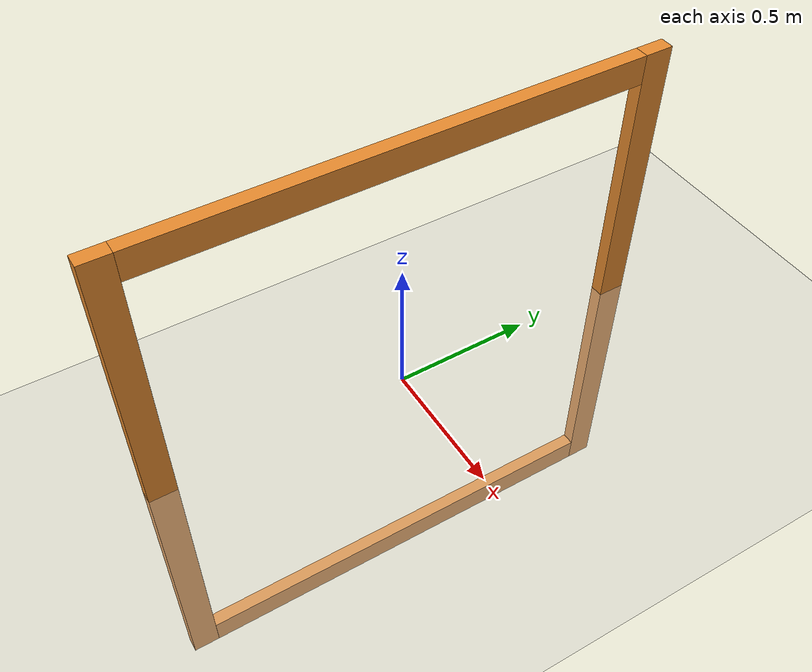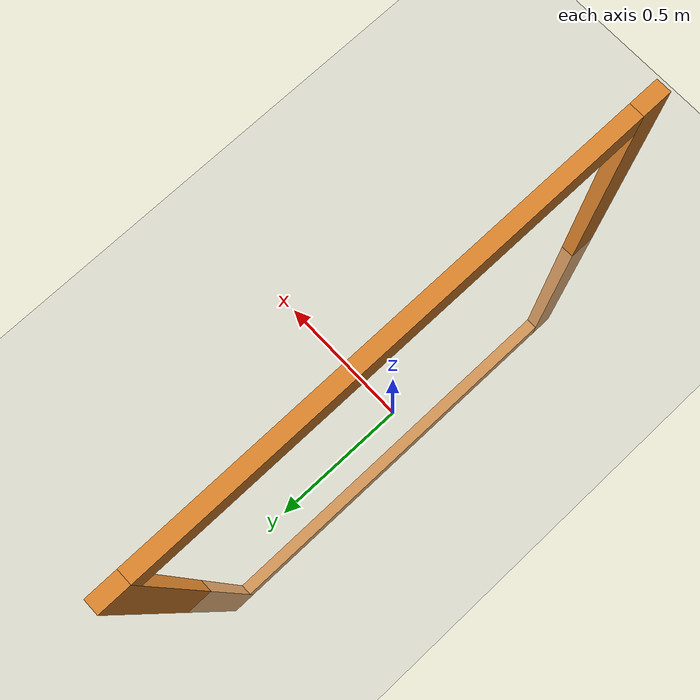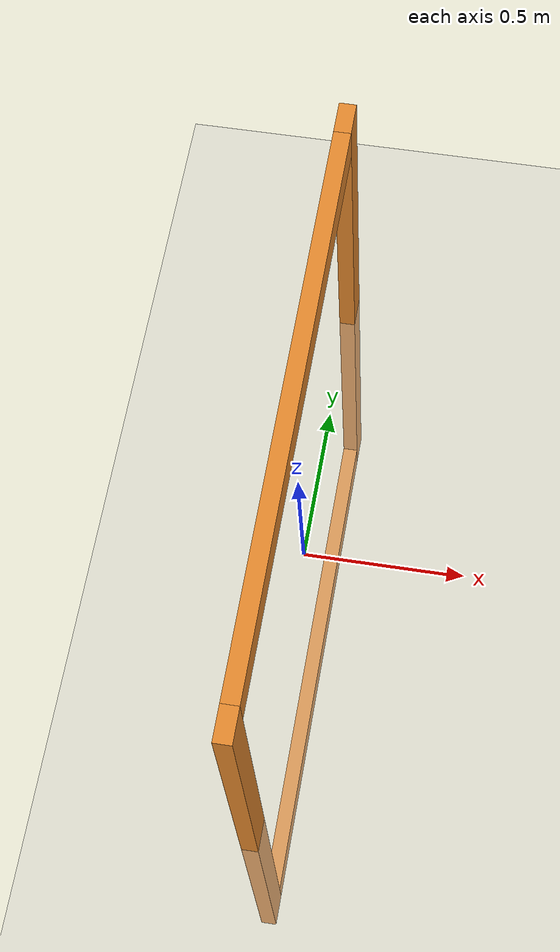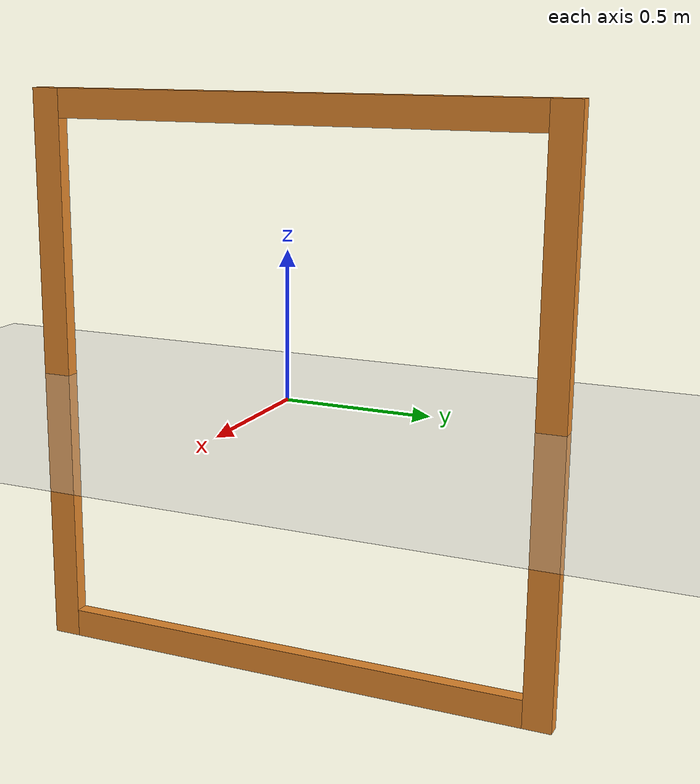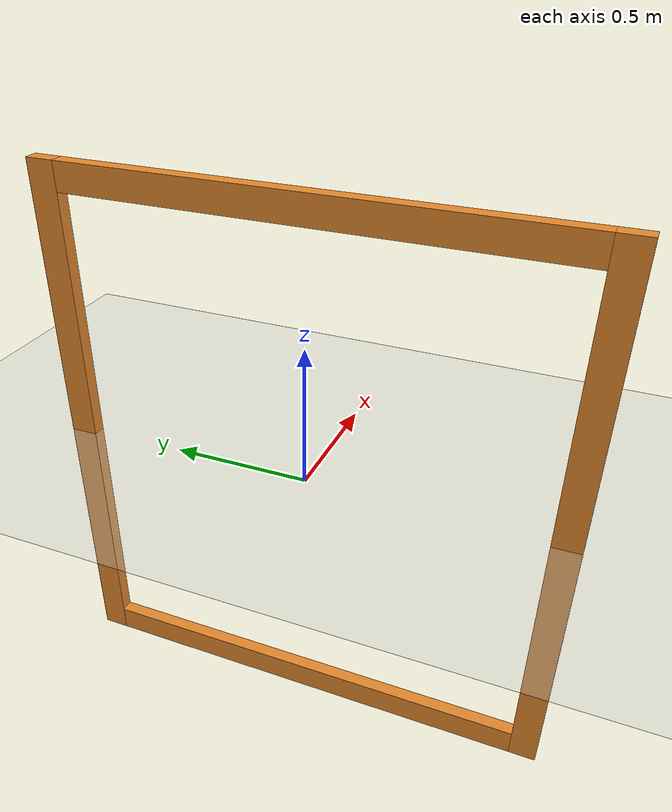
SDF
<sdf version="1.4">
 <world name="smart_drone_simple_world">
  <include><uri>model://ground_plane</uri></include>
  <include><uri>model://sun</uri></include>
  <model name="smart_drone_orange_gate10">
   <link name="left">
    <pose>0 -0.9 0 0 -0 0</pose>
    <inertial>
     <mass>1</mass>
     <inertia>
      <ixx>0.166667</ixx>
      <ixy>0</ixy>
      <ixz>0</ixz>
      <iyy>0.166667</iyy>
      <iyz>0</iyz>
      <izz>0.166667</izz>
     </inertia>
     <pose>0 -0.9 0 0 -0 0</pose>
    </inertial>
    <visual name="visual">
     <geometry><box><size>0.05 0.1 2</size></box></geometry>
     <material>
      <lighting>1</lighting>
      <script><uri>file://media/materials/scripts/gazebo.material</uri><name>Gazebo/Grey</name></script>
      <shader type="pixel"><normal_map>__default__</normal_map></shader>
      <ambient>0.9 0.54 0.18 1</ambient>
      <diffuse>0.9 0.54 0.18 1</diffuse>
      <specular>0.9 0.54 0.18 1</specular>
      <emissive>0 0 0 1</emissive>
     </material>
    </visual>
    <collision name="collision">
     <geometry><box><size>0.05 0.1 2</size></box></geometry>
     <surface>
      <friction>
       <ode><mu>1</mu><mu2>1</mu2><fdir1>0 0 0</fdir1><slip1>0</slip1><slip2>0</slip2></ode>
       <torsional>
        <coefficient>1</coefficient>
        <patch_radius>0</patch_radius>
        <surface_radius>0</surface_radius>
        <use_patch_radius>1</use_patch_radius>
        <ode><slip>0</slip></ode>
       </torsional>
      </friction>
      <bounce><restitution_coefficient>0</restitution_coefficient><threshold>1e+06</threshold></bounce>
      <contact>
       <collide_without_contact>0</collide_without_contact>
       <collide_without_contact_bitmask>1</collide_without_contact_bitmask>
       <collide_bitmask>1</collide_bitmask>
       <ode>
        <soft_cfm>0</soft_cfm>
        <soft_erp>0.2</soft_erp>
        <kp>1e+13</kp>
        <kd>1</kd>
        <max_vel>0.01</max_vel>
        <min_depth>0</min_depth>
       </ode>
       <bullet>
        <split_impulse>1</split_impulse>
        <split_impulse_penetration_threshold>-0.01</split_impulse_penetration_threshold>
        <soft_cfm>0</soft_cfm>
        <soft_erp>0.2</soft_erp>
        <kp>1e+13</kp>
        <kd>1</kd>
       </bullet>
      </contact>
     </surface>
    </collision>
   </link>
   <link name="top">
    <pose>0 0 0.95 0 -0 0</pose>
    <inertial>
     <mass>1</mass>
     <inertia>
      <ixx>0.166667</ixx>
      <ixy>0</ixy>
      <ixz>0</ixz>
      <iyy>0.166667</iyy>
      <iyz>0</iyz>
      <izz>0.166667</izz>
     </inertia>
     <pose>0 0 0.95 0 -0 0</pose>
    </inertial>
    <visual name="visual">
     <geometry><box><size>0.05 1.7 0.1</size></box></geometry>
     <material>
      <lighting>1</lighting>
      <script><uri>file://media/materials/scripts/gazebo.material</uri><name>Gazebo/Grey</name></script>
      <shader type="pixel"><normal_map>__default__</normal_map></shader>
      <ambient>0.9 0.54 0.18 1</ambient>
      <diffuse>0.9 0.54 0.18 1</diffuse>
      <specular>0.9 0.54 0.18 1</specular>
      <emissive>0 0 0 1</emissive>
     </material>
    </visual>
    <collision name="collision">
     <geometry><box><size>0.05 1.7 0.1</size></box></geometry>
     <surface>
      <friction>
       <ode><mu>1</mu><mu2>1</mu2><fdir1>0 0 0</fdir1><slip1>0</slip1><slip2>0</slip2></ode>
       <torsional>
        <coefficient>1</coefficient>
        <patch_radius>0</patch_radius>
        <surface_radius>0</surface_radius>
        <use_patch_radius>1</use_patch_radius>
        <ode><slip>0</slip></ode>
       </torsional>
      </friction>
      <bounce><restitution_coefficient>0</restitution_coefficient><threshold>1e+06</threshold></bounce>
      <contact>
       <collide_without_contact>0</collide_without_contact>
       <collide_without_contact_bitmask>1</collide_without_contact_bitmask>
       <collide_bitmask>1</collide_bitmask>
       <ode>
        <soft_cfm>0</soft_cfm>
        <soft_erp>0.2</soft_erp>
        <kp>1e+13</kp>
        <kd>1</kd>
        <max_vel>0.01</max_vel>
        <min_depth>0</min_depth>
       </ode>
       <bullet>
        <split_impulse>1</split_impulse>
        <split_impulse_penetration_threshold>-0.01</split_impulse_penetration_threshold>
        <soft_cfm>0</soft_cfm>
        <soft_erp>0.2</soft_erp>
        <kp>1e+13</kp>
        <kd>1</kd>
       </bullet>
      </contact>
     </surface>
    </collision>
   </link>
   <link name="bot">
    <pose>0 0 -0.95 0 -0 0</pose>
    <inertial>
     <mass>1</mass>
     <inertia>
      <ixx>0.166667</ixx>
      <ixy>0</ixy>
      <ixz>0</ixz>
      <iyy>0.166667</iyy>
      <iyz>0</iyz>
      <izz>0.166667</izz>
     </inertia>
     <pose>0 0 -0.95 0 -0 0</pose>
    </inertial>
    <visual name="visual">
     <geometry><box><size>0.05 1.7 0.1</size></box></geometry>
     <material>
      <lighting>1</lighting>
      <script><uri>file://media/materials/scripts/gazebo.material</uri><name>Gazebo/Grey</name></script>
      <shader type="pixel"><normal_map>__default__</normal_map></shader>
      <ambient>0.9 0.54 0.18 1</ambient>
      <diffuse>0.9 0.54 0.18 1</diffuse>
      <specular>0.9 0.54 0.18 1</specular>
      <emissive>0 0 0 1</emissive>
     </material>
    </visual>
    <collision name="collision">
     <geometry><box><size>0.05 1.7 0.1</size></box></geometry>
     <surface>
      <friction>
       <ode><mu>1</mu><mu2>1</mu2><fdir1>0 0 0</fdir1><slip1>0</slip1><slip2>0</slip2></ode>
       <torsional>
        <coefficient>1</coefficient>
        <patch_radius>0</patch_radius>
        <surface_radius>0</surface_radius>
        <use_patch_radius>1</use_patch_radius>
        <ode><slip>0</slip></ode>
       </torsional>
      </friction>
      <bounce><restitution_coefficient>0</restitution_coefficient><threshold>1e+06</threshold></bounce>
      <contact>
       <collide_without_contact>0</collide_without_contact>
       <collide_without_contact_bitmask>1</collide_without_contact_bitmask>
       <collide_bitmask>1</collide_bitmask>
       <ode>
        <soft_cfm>0</soft_cfm>
        <soft_erp>0.2</soft_erp>
        <kp>1e+13</kp>
        <kd>1</kd>
        <max_vel>0.01</max_vel>
        <min_depth>0</min_depth>
       </ode>
       <bullet>
        <split_impulse>1</split_impulse>
        <split_impulse_penetration_threshold>-0.01</split_impulse_penetration_threshold>
        <soft_cfm>0</soft_cfm>
        <soft_erp>0.2</soft_erp>
        <kp>1e+13</kp>
        <kd>1</kd>
       </bullet>
      </contact>
     </surface>
    </collision>
   </link>
   <link name="right">
    <pose>0 0.9 0 0 -0 0</pose>
    <inertial>
     <mass>1</mass>
     <inertia>
      <ixx>0.166667</ixx>
      <ixy>0</ixy>
      <ixz>0</ixz>
      <iyy>0.166667</iyy>
      <iyz>0</iyz>
      <izz>0.166667</izz>
     </inertia>
     <pose>0 0.9 0 0 -0 0</pose>
    </inertial>
    <visual name="visual">
     <geometry><box><size>0.05 0.1 2</size></box></geometry>
     <material>
      <lighting>1</lighting>
      <script><uri>file://media/materials/scripts/gazebo.material</uri><name>Gazebo/Grey</name></script>
      <shader type="pixel"><normal_map>__default__</normal_map></shader>
      <ambient>0.9 0.54 0.18 1</ambient>
      <diffuse>0.9 0.54 0.18 1</diffuse>
      <specular>0.9 0.54 0.18 1</specular>
      <emissive>0 0 0 1</emissive>
     </material>
    </visual>
    <collision name="collision">
     <geometry><box><size>0.05 0.1 2</size></box></geometry>
     <surface>
      <friction>
       <ode><mu>1</mu><mu2>1</mu2><fdir1>0 0 0</fdir1><slip1>0</slip1><slip2>0</slip2></ode>
       <torsional>
        <coefficient>1</coefficient>
        <patch_radius>0</patch_radius>
        <surface_radius>0</surface_radius>
        <use_patch_radius>1</use_patch_radius>
        <ode><slip>0</slip></ode>
       </torsional>
      </friction>
      <bounce><restitution_coefficient>0</restitution_coefficient><threshold>1e+06</threshold></bounce>
      <contact>
       <collide_without_contact>0</collide_without_contact>
       <collide_without_contact_bitmask>1</collide_without_contact_bitmask>
       <collide_bitmask>1</collide_bitmask>
       <ode>
        <soft_cfm>0</soft_cfm>
        <soft_erp>0.2</soft_erp>
        <kp>1e+13</kp>
        <kd>1</kd>
        <max_vel>0.01</max_vel>
        <min_depth>0</min_depth>
       </ode>
       <bullet>
        <split_impulse>1</split_impulse>
        <split_impulse_penetration_threshold>-0.01</split_impulse_penetration_threshold>
        <soft_cfm>0</soft_cfm>
        <soft_erp>0.2</soft_erp>
        <kp>1e+13</kp>
        <kd>1</kd>
       </bullet>
      </contact>
     </surface>
    </collision>
   </link>
   <static>1</static>
  </model>
 </world>
</sdf>
